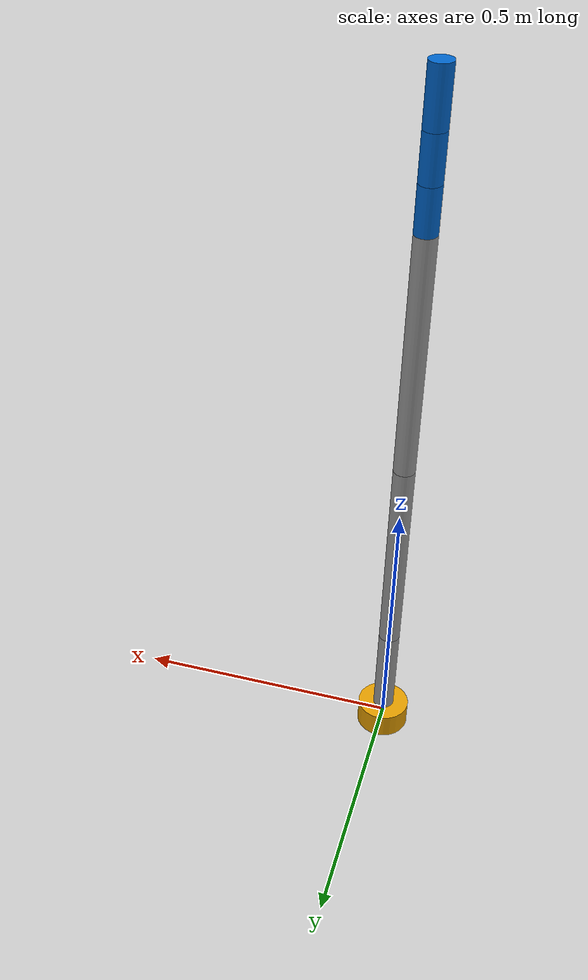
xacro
<?xml version="1.0"?>
<robot xmlns:xacro="http://www.ros.org/wiki/xacro" name="irb1200_stick">

  <!-- ===== basic props ===== -->
  <xacro:property name="PI" value="3.141592653589793"/>
  <xacro:property name="r"  value="0.02"/>  <!-- cylinder radius -->
  <xacro:property name="m"  value="1.0"/>   <!-- kg per link   -->

  <!-- ===== ABB IRB1200-5/0.9 kinematic dims (m) ===== -->
  <xacro:property name="d1" value="0.210"/>  <!-- base → shoulder -->
  <xacro:property name="a2" value="0.399"/>  <!-- shoulder → arm  -->
  <xacro:property name="a3" value="0.448"/>  <!-- arm → forearm   -->
  <xacro:property name="l4" value="0.082"/>  <!-- wrist 1         -->
  <xacro:property name="l5" value="0.082"/>  <!-- wrist 2         -->
  <xacro:property name="l6" value="0.100"/>  <!-- flange          -->

  <!-- ===== inertia helper ===== -->
  <xacro:macro name="cyl_inertial" params="mass length">
    <inertial>
      <origin xyz="0 0 ${length/2}" rpy="0 0 0"/>
      <mass value="${mass}"/>
      <!-- slender cylinder about X/Y; OK for a stick figure -->
      <inertia ixx="${(1/12.0)*mass*3*r*r + (1/2.0)*mass*r*r}"
               iyy="${(1/12.0)*mass*3*r*r + (1/2.0)*mass*r*r}"
               izz="${(1/2.0)*mass*r*r}"
               ixy="0" ixz="0" iyz="0"/>
    </inertial>
  </xacro:macro>

  <!-- ===== visual material ===== -->
  <material name="Grey"><color rgba="0.6 0.6 0.6 1"/></material>
  <material name="Blue"><color rgba="0.0 0.4 0.8 1"/></material>

  <!-- ===== link factory ===== -->
  <xacro:macro name="make_link" params="name length is_blue:=false">
    <link name="${name}">
      <visual>
        <origin xyz="0 0 ${length/2}" rpy="0 0 0"/>
        <geometry><cylinder radius="${r}" length="${length}"/></geometry>
        <xacro:if value="${is_blue}"><material name="Blue"/></xacro:if>
        <xacro:unless value="${is_blue}"><material name="Grey"/></xacro:unless>
      </visual>
      <collision>
        <origin xyz="0 0 ${length/2}" rpy="0 0 0"/>
        <geometry><cylinder radius="${r}" length="${length}"/></geometry>
      </collision>
      <xacro:cyl_inertial mass="${m}" length="${length}"/>
    </link>
  </xacro:macro>

  <!-- ===== links ===== -->
  <link name="base_link">
    <visual><geometry><cylinder radius="0.05" length="0.05"/></geometry></visual>
  </link>
  <xacro:make_link name="link_1" length="${d1}"/>
  <xacro:make_link name="link_2" length="${a2}"/>
  <xacro:make_link name="link_3" length="${a3}"/>
  <xacro:make_link name="link_4" length="${l4}" is_blue="true"/>
  <xacro:make_link name="link_5" length="${l5}" is_blue="true"/>
  <xacro:make_link name="link_6" length="${l6}" is_blue="true"/>

  <!-- ===== joints ===== -->
  <joint name="joint_1" type="revolute">
    <parent link="base_link"/><child link="link_1"/>
    <origin xyz="0 0 0" rpy="0 0 0"/><axis xyz="0 0 1"/>
    <limit effort="50" velocity="2" lower="-${PI}" upper="${PI}"/>
  </joint>

  <joint name="joint_2" type="revolute">
    <parent link="link_1"/><child link="link_2"/>
    <origin xyz="0 0 ${d1}" rpy="0 0 0"/><axis xyz="0 -1 0"/>
    <limit effort="50" velocity="2" lower="-2.5" upper="2.5"/>
  </joint>

  <joint name="joint_3" type="revolute">
    <parent link="link_2"/><child link="link_3"/>
    <origin xyz="0 0 ${a2}" rpy="0 0 0"/><axis xyz="0 -1 0"/>
    <limit effort="50" velocity="2" lower="-2.7" upper="2.7"/>
  </joint>

  <joint name="joint_4" type="revolute">
    <parent link="link_3"/><child link="link_4"/>
    <origin xyz="0 0 ${a3}" rpy="0 0 0"/><axis xyz="1 0 0"/>
    <limit effort="20" velocity="3" lower="-${PI}" upper="${PI}"/>
  </joint>

  <joint name="joint_5" type="revolute">
    <parent link="link_4"/><child link="link_5"/>
    <origin xyz="0 0 ${l4}" rpy="0 0 0"/><axis xyz="0 -1 0"/>
    <limit effort="20" velocity="3" lower="-${PI}" upper="${PI}"/>
  </joint>

  <joint name="joint_6" type="revolute">
    <parent link="link_5"/><child link="link_6"/>
    <origin xyz="0 0 ${l5}" rpy="0 0 0"/><axis xyz="1 0 0"/>
    <limit effort="20" velocity="3" lower="-${PI}" upper="${PI}"/>
  </joint>

  <!-- ===== ros2_control ===== -->
  <gazebo><plugin name="gz_ros2_control" filename="libgazebo_ros2_control.so"/></gazebo>

  <ros2_control name="irb1200_arm" type="system">
    <hardware><plugin>mock_components/GenericSystem</plugin></hardware>
    <joint name="joint_1"><command_interface name="position"/><state_interface name="position"/><state_interface name="velocity"/></joint>
    <joint name="joint_2"><command_interface name="position"/><state_interface name="position"/><state_interface name="velocity"/></joint>
    <joint name="joint_3"><command_interface name="position"/><state_interface name="position"/><state_interface name="velocity"/></joint>
    <joint name="joint_4"><command_interface name="position"/><state_interface name="position"/><state_interface name="velocity"/></joint>
    <joint name="joint_5"><command_interface name="position"/><state_interface name="position"/><state_interface name="velocity"/></joint>
    <joint name="joint_6"><command_interface name="position"/><state_interface name="position"/><state_interface name="velocity"/></joint>
  </ros2_control>

</robot>
